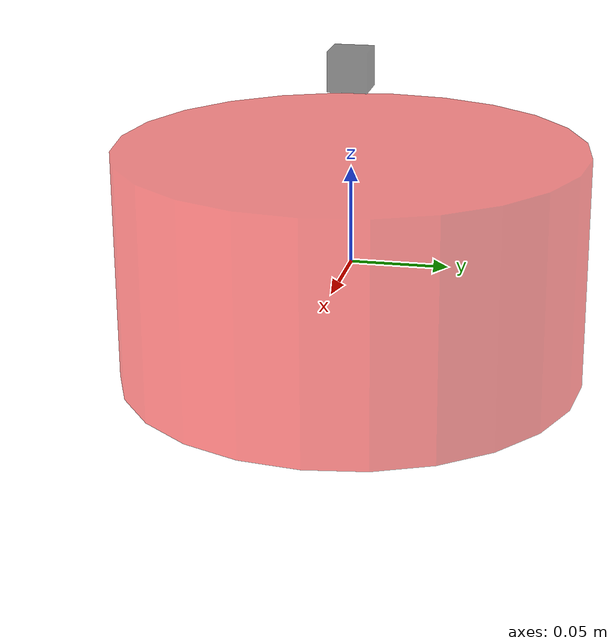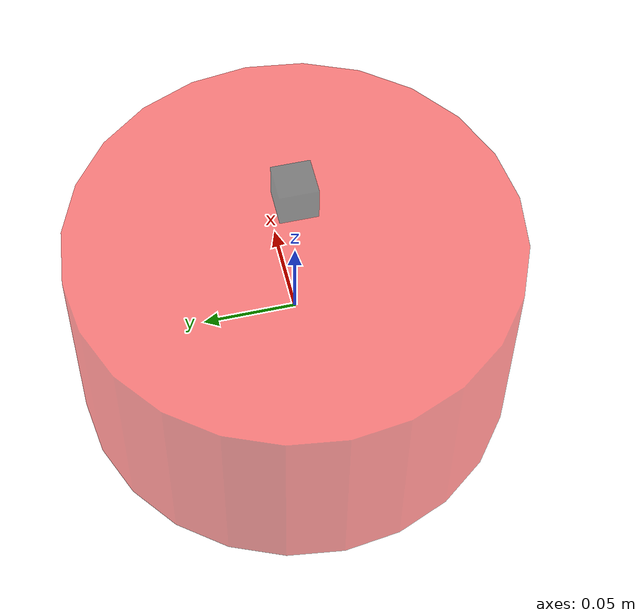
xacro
<?xml version="1.0"?>
<robot xmlns:xacro="http://www.ros.org/wiki/xacro" name="robot_name">

    <xacro:macro name="base_link" params="length radius">
        <!-- robot body-->
        <link name="base_link">
            <visual>
                <origin />
                <geometry>
                    <cylinder radius="${radius}" length="${length}" />
                </geometry>
                <material name="base_color">
                    <color rgba="1.0 0.0 0.0 0.5" />
                </material>
            </visual>
        </link>
    </xacro:macro>

    <xacro:macro name="imu_link" params="imu_name length width height xyz">
        <link name="${imu_name}">
            <visual>
                <origin />
                <geometry>
                    <box size="${length} ${width} ${height}" />
                </geometry>
                <material name="imu_color">
                    <color rgba="0.0 0.0 0.0 0.5" />
                </material>
            </visual>
        </link>
        <joint name="${imu_name}_in_base" type="fixed">
            <parent link="base_link" />
            <child link="${imu_name}" />
            <origin xyz="${xyz}" />
        </joint>
    </xacro:macro>

    <xacro:base_link radius="0.12" length="0.12" />
    <xacro:imu_link imu_name="imu_0" length="0.02" width="0.02" height="0.02" xyz="0.0 0.0 0.1" />
    <xacro:imu_link imu_name="imu_1" length="0.02" width="0.02" height="0.02" xyz="0.0 0.0 -0.1" />
</robot>
